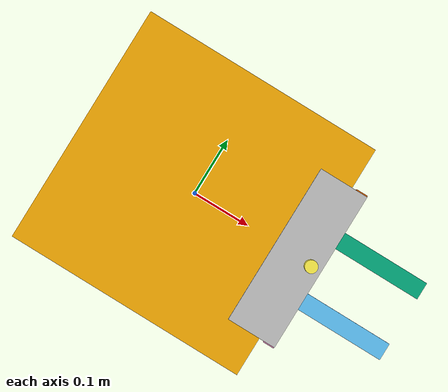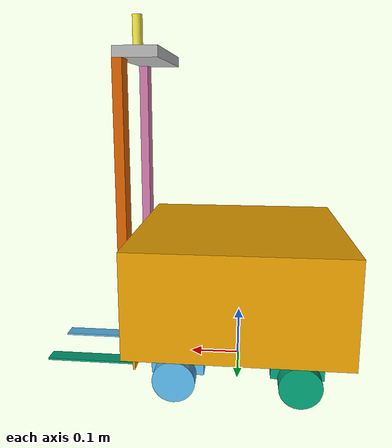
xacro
<?xml version="0.1"?>

<robot name="forklift"  xmlns:xacro="http://www.ros.org/wiki/xacro">
<xacro:include filename="$(find my_urdf)/urdf/joints_links.xacro"/>
<xacro:include filename="$(find my_urdf)/urdf/forklift.plugin.xacro"/>

<xacro:property name="g_b" value="0.081"/><!--ground to bot clearance-->

<!--Chassis properties-->
<xacro:property name="cx" value="0.41"/>
<xacro:property name="cy" value="0.41"/>
<xacro:property name="cz" value="0.2"/>
<xacro:property name="cm" value="13.6"/>

<!--lift properties-->
<xacro:property name="lx" value="0.005"/>
<xacro:property name="ly" value="0.185"/>
<xacro:property name="lz" value="0.23"/>
<xacro:property name="lm" value="0.200"/>

<!--lift rod properties-->
<xacro:property name="lrx" value="0.018"/>
<xacro:property name="lry" value="0.04"/>
<xacro:property name="lrz" value="0.524"/>
<xacro:property name="lrm" value="0.200"/>

<!--lift rod horizontal properties-->
<xacro:property name="lhx" value="0.08"/>
<xacro:property name="lhy" value="0.261"/>
<xacro:property name="lhz" value="0.02"/>
<xacro:property name="lhm" value="0.100"/>

<!--rod properties-->
<xacro:property name="rx" value="0.185"/>
<xacro:property name="ry" value="0.03"/>
<xacro:property name="rz" value="0.004"/>
<xacro:property name="rm" value="0.230"/>

<!--block properties-->
<xacro:property name="bx" value="0.1"/>
<xacro:property name="by" value="0.04"/>
<xacro:property name="bz" value="0.06"/>
<xacro:property name="bm" value="0.100"/>

<!--coupler properties-->
<xacro:property name="coh" value="0.03"/>
<xacro:property name="cor" value="0.01"/>
<xacro:property name="com" value="0.05"/>

<!--wheel properties-->
<xacro:property name="wh" value="0.03"/>
<xacro:property name="wr" value="0.039"/>
<xacro:property name="wm" value="1.1"/>

<!-- load properties-->
<xacro:property name="lox" value="0.55"/>
<xacro:property name="loy" value="0.5"/>
<xacro:property name="loz" value="0.4"/>
<xacro:property name="lom" value="5"/>

<!--laser scanner properties-->
<xacro:property name="lsh" value="0.07"/>
<xacro:property name="lsr" value="0.01"/>
<xacro:property name="lsm" value="0.1"/>

<m_box name="chassis" size="${cx} ${cy} ${cz}" origin_rpy="0.0 0.0 0.0" origin_xyz="0.0 0.0 ${g_b+cz/2}"
    mass="${cm}"
    ixx="${cm*(cz*cz+cy*cy)/12}" ixy="0" ixz="0"
    iyy="${cm*(cx*cx+cz*cz)/12}" iyz="0"
    izz="${cm*(cy*cy+cx*cx)/12}"/>
<!--/____________________________block__________________________________________________________________________/-->

<m_box name="rf_block" size="${bx} ${by} ${bz}" origin_xyz="0.0 -${by/2} -${bz/2}" origin_rpy="0.0 0.0 0.0"
    mass="${bm}"
    ixx="${bm*(bz*bz+by*by)/12}" ixy="0" ixz="0"
    iyy="${bm*(bx*bx+bz*bz)/12}" iyz="0"
    izz="${bm*(by*by+bx*bx)/12}"/>

<f_joint name="chassis_to_rf_block" type="fixed" origin_xyz="0.1125 0.135 ${g_b}" origin_rpy="0.0 0.0 0.0"
    parent="chassis" child="rf_block"/>

<m_box name="rb_block" size="${bx} ${by} ${bz}" origin_xyz="0.0 -${by/2} -${bz/2}" origin_rpy="0.0 0.0 0.0"
    mass="${bm}"
    ixx="${bm*(bz*bz+by*by)/12}" ixy="0" ixz="0"
    iyy="${bm*(bx*bx+bz*bz)/12}" iyz="0"
    izz="${bm*(by*by+bx*bx)/12}"/>

<f_joint name="chassis_to_rb_block" type="fixed" origin_xyz="-0.1125 0.135 ${g_b}" origin_rpy="0.0 0.0 0.0"
    parent="chassis" child="rb_block"/>

<m_box name="lf_block" size="${bx} ${by} ${bz}" origin_xyz="0.0 ${by/2} -${bz/2}" origin_rpy="0.0 0.0 0.0"
    mass="${bm}"
    ixx="${bm*(bz*bz+by*by)/12}" ixy="0" ixz="0"
    iyy="${bm*(bx*bx+bz*bz)/12}" iyz="0"
    izz="${bm*(by*by+bx*bx)/12}"/>

<f_joint name="chassis_to_lf_block" type="fixed" origin_xyz="0.1125 -0.135 ${g_b}" origin_rpy="0.0 0.0 0.0"
    parent="chassis" child="lf_block"/>

<m_box name="lb_block" size="${bx} ${by} ${bz}" origin_xyz="0.0 ${by/2} -${bz/2}" origin_rpy="0.0 0.0 0.0"
    mass="${bm}"
    ixx="${bm*(bz*bz+by*by)/12}" ixy="0" ixz="0"
    iyy="${bm*(bx*bx+bz*bz)/12}" iyz="0"
    izz="${bm*(by*by+bx*bx)/12}"/>

<f_joint name="chassis_to_lb_block" type="fixed" origin_xyz="-0.1125 -0.135 ${g_b}" origin_rpy="0.0 0.0 0.0"
    parent="chassis" child="lb_block"/>
<!--/___________________________coupler_________________________________________________________________________/-->

<m_cylinder name="rf_coup" radius="${cor}" length="${coh}" origin_xyz="0.0 ${coh/2} 0.0" origin_rpy="1.57 0.0 0.0"
            mass="${com}"
            ixx="${com*(3*cor*cor+coh*coh)/12}" ixy="0" ixz="0"
            iyy="${com*(3*cor*cor+coh*coh)/12}" iyz="0"
            izz="${(com*cor*cor)/2}"/>

<f_joint name="rf_block_to_rf_coup" type="fixed" origin_xyz="0.0 0.0 -${bz/2 + 0.012}" origin_rpy="0.0 0.0 0.0"
    parent="rf_block" child="rf_coup"/>

<m_cylinder name="rb_coup" radius="${cor}" length="${coh}" origin_xyz="0.0 ${coh/2} 0.0" origin_rpy="1.57 0.0 0.0"
            mass="${com}"
            ixx="${com*(3*cor*cor+coh*coh)/12}" ixy="0" ixz="0"
            iyy="${com*(3*cor*cor+coh*coh)/12}" iyz="0"
            izz="${(com*cor*cor)/2}"/>

<f_joint name="rb_block_to_rb_coup" type="fixed" origin_xyz="0.0 0.0 -${bz/2 + 0.012}" origin_rpy="0.0 0.0 0.0"
    parent="rb_block" child="rb_coup"/>

<m_cylinder name="lf_coup" radius="${cor}" length="${coh}" origin_xyz="0.0 -${coh/2} 0.0" origin_rpy="1.57 0.0 0.0"
            mass="${com}"
            ixx="${com*(3*cor*cor+coh*coh)/12}" ixy="0" ixz="0"
            iyy="${com*(3*cor*cor+coh*coh)/12}" iyz="0"
            izz="${(com*cor*cor)/2}"/>

<f_joint name="lf_block_to_lf_coup" type="fixed" origin_xyz="0.0 0.0 -${bz/2 + 0.012}" origin_rpy="0.0 0.0 0.0"
    parent="lf_block" child="lf_coup"/>

<m_cylinder name="lb_coup" radius="${cor}" length="${coh}" origin_xyz="0.0 -${coh/2} 0.0" origin_rpy="1.57 0.0 0.0"
            mass="${com}"
            ixx="${com*(3*cor*cor+coh*coh)/12}" ixy="0" ixz="0"
            iyy="${com*(3*cor*cor+coh*coh)/12}" iyz="0"
            izz="${(com*cor*cor)/2}"/>

<f_joint name="lb_block_to_lb_coup" type="fixed" origin_xyz="0.0 0.0 -${bz/2 + 0.012}" origin_rpy="0.0 0.0 0.0"
    parent="lb_block" child="lb_coup"/>
<!--/________________________________________wheels_____________________________________________________________/-->

<m_cylinder name="rf_wheel" radius="${wr}" length="${wh}" origin_rpy="1.57 0.0 0.0" origin_xyz="0.0 ${wh/2} 0.0"
            mass="${wm}"
            ixx="${wm*(3*wr*wr+wh*wh)/12}" ixy="0" ixz="0"
            iyy="${wm*(3*wr*wr+wh*wh)/12}" iyz="0"
            izz="${(wm*wr*wr)/2}"/>

<c_joint name="chassis_to_rf_wheel" type="continuous" origin_xyz="0.1125 ${cy/2 - 0.01 - wh} ${wr}" origin_rpy="0.0 0.0 0.0"
         axis_xyz="0 1 0" parent="chassis" child="rf_wheel"/>

<transmission name="trans_chassis_to_rf_wheel">
      <type>transmission_interface/SimpleTransmission</type>
      <joint name="chassis_to_rf_wheel">
      <hardwareInterface>hardware_interface/VelocityJointInterface</hardwareInterface>
      </joint>
      <actuator name="motor_chassis_to_rf_wheel">
      <hardwareInterface>hardware_interface/EffortJointInterface</hardwareInterface>
      <mechanicalReduction>1</mechanicalReduction>
    </actuator>
</transmission>

<m_cylinder name="rb_wheel" radius="${wr}" length="${wh}" origin_rpy="1.57 0.0 0.0" origin_xyz="0.0 ${wh/2} 0.0"
            mass="${wm}"
            ixx="${wm*(3*wr*wr+wh*wh)/12}" ixy="0" ixz="0"
            iyy="${wm*(3*wr*wr+wh*wh)/12}" iyz="0"
            izz="${(wm*wr*wr)/2}"/>

<c_joint name="chassis_to_rb_wheel" type="continuous" origin_xyz="-0.1125 ${cy/2 - 0.01 - wh} ${wr}" origin_rpy="0.0 0.0 0.0"
         axis_xyz="0 1 0" parent="chassis" child="rb_wheel"/>

<transmission name="trans_chassis_to_rb_wheel">
      <type>transmission_interface/SimpleTransmission</type>
      <joint name="chassis_to_rb_wheel">
      <hardwareInterface>hardware_interface/VelocityJointInterface</hardwareInterface>
      </joint>
      <actuator name="motor_chassis_to_rf_wheel">
      <hardwareInterface>hardware_interface/EffortJointInterface</hardwareInterface>
      <mechanicalReduction>1</mechanicalReduction>
    </actuator>
</transmission>

<m_cylinder name="lf_wheel" radius="${wr}" length="${wh}" origin_rpy="1.57 0.0 0.0" origin_xyz="0.0 ${wh/2} 0.0"
            mass="${wm}"
            ixx="${wm*(3*wr*wr+wh*wh)/12}" ixy="0" ixz="0"
            iyy="${wm*(3*wr*wr+wh*wh)/12}" iyz="0"
            izz="${(wm*wr*wr)/2}"/>

<c_joint name="chassis_to_lf_wheel" type="continuous" origin_xyz="0.1125 -${cy/2 - 0.01} ${wr}" origin_rpy="0.0 0.0 0.0"
         axis_xyz="0 1 0" parent="chassis" child="lf_wheel"/>

<transmission name="trans_chassis_to_lf_wheel">
      <type>transmission_interface/SimpleTransmission</type>
      <joint name="chassis_to_lf_wheel">
      <hardwareInterface>hardware_interface/VelocityJointInterface</hardwareInterface>
      </joint>
      <actuator name="motor_chassis_to_lf_wheel">
      <hardwareInterface>hardware_interface/EffortJointInterface</hardwareInterface>
      <mechanicalReduction>1</mechanicalReduction>
    </actuator>
</transmission>

<m_cylinder name="lb_wheel" radius="${wr}" length="${wh}" origin_rpy="1.57 0.0 0.0" origin_xyz="0.0 ${wh/2} 0.0"
            mass="${wm}"
            ixx="${wm*(3*wr*wr+wh*wh)/12}" ixy="0" ixz="0"
            iyy="${wm*(3*wr*wr+wh*wh)/12}" iyz="0"
            izz="${(wm*wr*wr)/2}"/>

<c_joint name="chassis_to_lb_wheel" type="continuous" origin_xyz="-0.1125 -${cy/2 - 0.01} ${wr}" origin_rpy="0.0 0.0 0.0"
         axis_xyz="0 1 0" parent="chassis" child="lb_wheel"/>

<transmission name="trans_chassis_to_lb_wheel">
      <type>transmission_interface/SimpleTransmission</type>
      <joint name="chassis_to_lb_wheel">
      <hardwareInterface>hardware_interface/VelocityJointInterface</hardwareInterface>
      </joint>
      <actuator name="motor_chassis_to_lb_wheel">
      <hardwareInterface>hardware_interface/EffortJointInterface</hardwareInterface>
      <mechanicalReduction>1</mechanicalReduction>
    </actuator>
</transmission>
<!--/_______________________________________lift________________________________________________________________/-->

<m_box name="lift_r" size="${lrx} ${lry} ${lrz}" origin_rpy="0.0 0.0 0.0" origin_xyz="0.0 0.0 ${lrz/2+g_b}"
        mass="${lrm}"
        ixx="${lrm*(lrz*lrz+lry*lry)/12}" ixy="0" ixz="0"
        iyy="${lrm*(lrx*lrx+lrz*lrz)/12}" iyz="0"
        izz="${lrm*(lry*lry+lrx*lrx)/12}"/>

<f_joint name="lift_r_to_chassis" type="fixed" origin_xyz="${lrx/2 + cx/2} ${ly/2+lry/2} 0.0" origin_rpy="0.0 0.0 0.0"
        parent="chassis" child="lift_r"/>

<m_box name="lift_l" size="${lrx} ${lry} ${lrz}" origin_rpy="0.0 0.0 0.0" origin_xyz="0.0 0.0 ${lrz/2+g_b}"
        mass="${lrm}"
        ixx="${lrm*(lrz*lrz+lry*lry)/12}" ixy="0" ixz="0"
        iyy="${lrm*(lrx*lrx+lrz*lrz)/12}" iyz="0"
        izz="${lrm*(lry*lry+lrx*lrx)/12}"/>

<f_joint name="lift_l_to_l_chassis" type="fixed" origin_xyz="${lrx/2 + cx/2} -${ly/2+lry/2} 0.0" origin_rpy="0.0 0.0 0.0"
        parent="chassis" child="lift_l"/>

<m_box name="lift_h" size="${lhx} ${lhy} ${lhz}" origin_rpy="0.0 0.0 0.0" origin_xyz="-${lhx/2} 0.0 ${lhz/2}"
        mass="${lhm}"
        ixx="${lhm*(lhz*lhz+lhy*lhy)/12}" ixy="0" ixz="0"
        iyy="${lrm*(lhx*lhz+lhz*lhz)/12}" iyz="0"
        izz="${lrm*(lhy*lhy+lhx*lhx)/12}"/>

<f_joint name="lift_h_to_chassis" type="fixed" origin_xyz="${cx/2+lrx} 0.0 ${g_b+lrz}" origin_rpy="0.0 0.0 0.0"
        parent="chassis" child="lift_h"/>

<m_box name="lift" size="${lx} ${ly} ${lz}" origin_rpy="0.0 0.0 0.0" origin_xyz="0.0 0.0 ${lz/2}"
        mass="${lm}"
        ixx="${lm*(lz*lz+ly*ly)/12}" ixy="0" ixz="0"
        iyy="${lm*(lx*lx+lz*lz)/12}" iyz="0"
        izz="${lm*(ly*ly+lx*lx)/12}"/>

<m_joint name="chassis_to_lift" type="prismatic" origin_xyz="${lx/2+cx/2} 0.0 0.0" origin_rpy="0.0 0.0 0.0"
        axis_xyz="0 0 1" parent="chassis" child="lift" limit_e="1000.0" limit_l="0" limit_u="0.344"
         limit_v="0.02"/>

<transmission name="trans_chassis_to_lift">
      <type>transmission_interface/SimpleTransmission</type>
      <joint name="chassis_to_lift">
      <hardwareInterface>hardware_interface/EffortJointInterface</hardwareInterface>
      </joint>
      <actuator name="motor_chassis_to_lift">
      <hardwareInterface>hardware_interface/EffortJointInterface</hardwareInterface>
      <mechanicalReduction>1</mechanicalReduction>
    </actuator>
</transmission>

<m_box name="r_rod" size="${rx} ${ry} ${rz}" origin_xyz="0.0 0.0 ${rz/2}" origin_rpy="0.0 0.0 0.0"
    mass="${rm}"
    ixx="${rm*(rz*rz+ry*ry)/12}" ixy="0" ixz="0"
    iyy="${rm*(rx*rx+rz*rz)/12}" iyz="0"
    izz="${rm*(ry*ry+rx*rx)/12}"/>

<f_joint name="lift_to_r_rod" type="fixed" origin_xyz="${rx/2+lx/2} -0.0575 0.0" origin_rpy="0.0 0.0 0.0"
        parent="lift" child="r_rod"/>

<m_box name="l_rod" size="${rx} ${ry} ${rz}" origin_xyz="0.0 0.0 ${rz/2}" origin_rpy="0.0 0.0 0.0"
    mass="${rm}"
    ixx="${rm*(rz*rz+ry*ry)/12}" ixy="0" ixz="0"
    iyy="${rm*(rx*rx+rz*rz)/12}" iyz="0"
    izz="${rm*(ry*ry+rx*rx)/12}"/>

<f_joint name="lift_to_l_rod" type="fixed" origin_xyz="${rx/2 + lx/2} 0.0575 0.0" origin_rpy="0.0 0.0 0.0"
        parent="lift" child="l_rod"/>

<m_cylinder name="laser_scan" length="${lsh}" radius="${lsr}" origin_rpy="0.0 0.0 0.0" origin_xyz="0 0 0"
    mass="${lsm}"
    ixx="${lsm*(3*lsr*lsr+lsh*lsh)/12}" ixy="0" ixz="0"
    iyy="${wm*(3*lsr*lsr+lsh*lsh)/12}" iyz="0"
    izz="${(lsm*lsr*lsr)/2}"/>

<f_joint name="laser_scanner_chassis" type="fixed" origin_xyz="${cx/2} 0 ${lrz+ lhz + lsh/2 + g_b}" origin_rpy="0.0 0.0 0.0"
             parent="chassis" child="laser_scan"/>

    <gazebo>
    <plugin name="gazebo_ros_plugin" filename="libgazebo_ros_control.so">
    <robotSimType>gazebo_ros_control/DefaultRobotHWSim</robotSimType>
    <legacyModeNS>true</legacyModeNS>
    </plugin>
  </gazebo>

</robot>

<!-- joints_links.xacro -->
<robot xmlns:xacro="http://www.ros.org/wiki/xacro">

 <xacro:macro name="m_joint" params="name type axis_xyz origin_rpy origin_xyz parent child limit_e limit_l limit_u limit_v">
    <joint name="${name}" type="${type}">
      <axis xyz="${axis_xyz}" />
      <limit effort="${limit_e}" lower="${limit_l}" upper="${limit_u}" velocity="${limit_v}" />
      <origin rpy="${origin_rpy}" xyz="${origin_xyz}" />
      <parent link="${parent}" />
      <child link="${child}" />
    </joint>
    </xacro:macro>

  <xacro:macro name="f_joint" params="name type origin_rpy origin_xyz parent child ">
    <joint name="${name}" type="${type}">
        <origin xyz="${origin_xyz}" rpy="${origin_rpy}"/>
        <parent link="${parent}"/>
        <child link="${child}"/>
    </joint>
  </xacro:macro>

  <xacro:macro name="c_joint" params="name type origin_rpy origin_xyz parent child axis_xyz ">
    <joint name="${name}" type="${type}">
        <axis xyz="${axis_xyz}"/>
        <origin xyz="${origin_xyz}" rpy="${origin_rpy}"/>
        <parent link="${parent}"/>
        <child link="${child}"/>
    </joint>
  </xacro:macro>

  <xacro:macro name="m_box" params="name origin_xyz origin_rpy size mass ixx ixy ixz iyy iyz izz">
    <link name="${name}">
      <inertial>
        <mass value="${mass}" />
        <origin rpy="${origin_rpy}" xyz="${origin_xyz}" />
        <inertia ixx="${ixx}" ixy="${ixy}" ixz="${ixz}" iyy="${iyy}" iyz="${iyz}" izz="${izz}" />
      </inertial>
      <collision>
        <origin rpy="${origin_rpy}" xyz="${origin_xyz}" />
        <geometry>
          <box size="${size}" />
        </geometry>
      </collision>
      <visual>
        <origin rpy="${origin_rpy}" xyz="${origin_xyz}" />
        <geometry>
          <box size="${size}" />
        </geometry>
      </visual>
    </link>
  </xacro:macro>

<xacro:macro name="m_cylinder" params="name origin_xyz origin_rpy radius length mass ixx ixy ixz iyy iyz izz">
 <link name="${name}">
      <inertial>
        <mass value="${mass}" />
        <origin rpy="${origin_rpy}" xyz="${origin_xyz}" />
        <inertia ixx="${ixx}" ixy="${ixy}" ixz="${ixz}" iyy="${iyy}" iyz="${iyz}" izz="${izz}" />
      </inertial>
      <collision>
        <origin rpy="${origin_rpy}" xyz="${origin_xyz}" />
        <geometry>
          <cylinder radius="${radius}" length="${length}" />
        </geometry>
      </collision>
      <visual>
        <origin rpy="${origin_rpy}" xyz="${origin_xyz}" />
        <geometry>
          <cylinder radius="${radius}" length="${length}" />
        </geometry>
      </visual>
    </link>
 </xacro:macro>
</robot>
